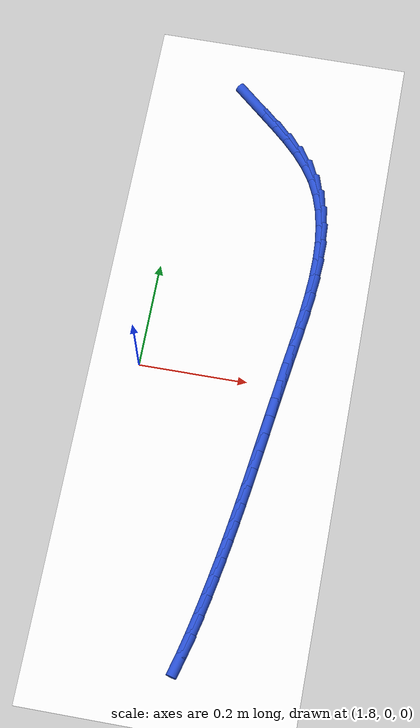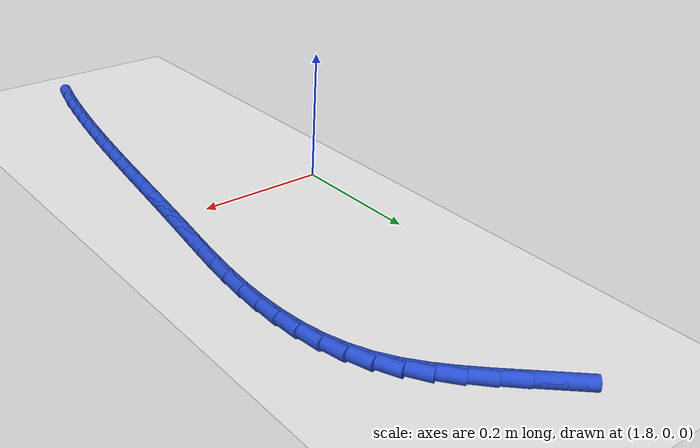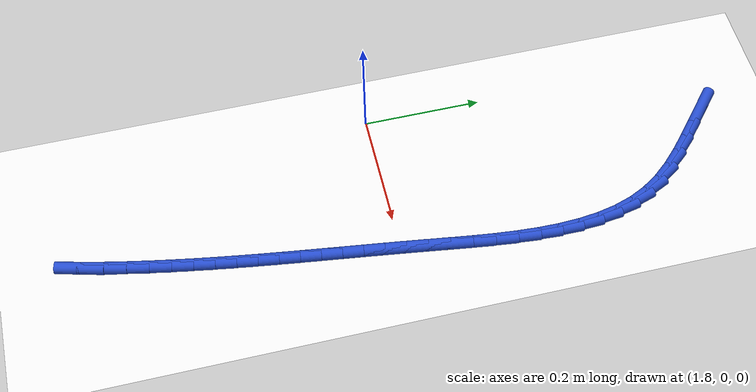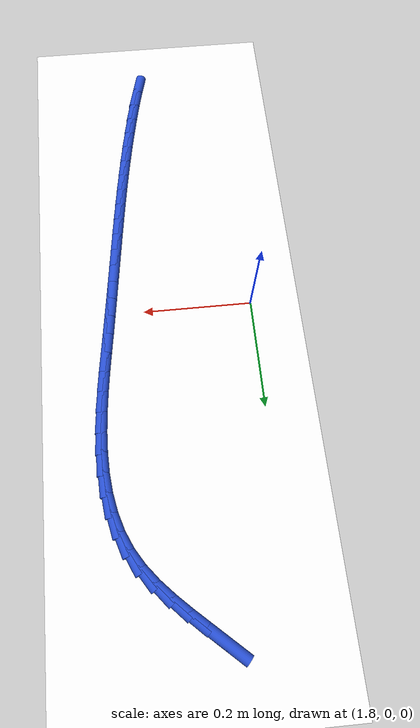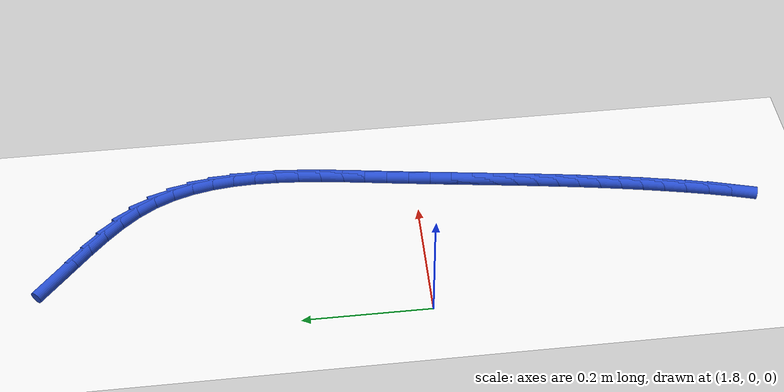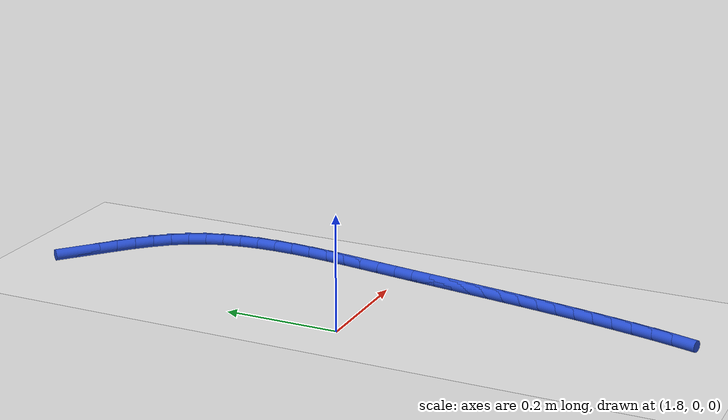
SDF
<sdf version="1.6">
 <world name="default">
  <model name="ground_plane">
   <static>1</static>
   <link name="link">
    <collision name="collision">
     <geometry><plane><normal>0 0 1</normal><size>100 100</size></plane></geometry>
     <surface><friction><ode><mu>100</mu><mu2>50</mu2></ode></friction></surface>
    </collision>
    <visual name="visual">
     <cast_shadows>0</cast_shadows>
     <geometry><plane><normal>0 0 1</normal><size>100 100</size></plane></geometry>
     <material>
      <script><uri>file://media/materials/scripts/gazebo.material</uri><name>Gazebo/WhiteGlow</name></script>
     </material>
    </visual>
   </link>
  </model>
  <model name="line">
   <link name="link_83">
    <pose>1.9099915369198925 0.5705289220239534 0.01 0 1.57 -0.7143404378488177</pose>
    <collision name="collision">
     <geometry><cylinder><radius>0.01</radius><length>0.08</length></cylinder></geometry>
    </collision>
    <visual name="visual">
     <material>
      <script><name>Gazebo/Blue</name><uri>file://media/materials/scripts/gazebo.material</uri></script>
     </material>
     <geometry><cylinder><radius>0.01</radius><length>0.08</length></cylinder></geometry>
    </visual>
   </link>
   <link name="link_84">
    <pose>1.9370216586375075 0.5470909931320691 0.01 0 1.57 -0.7146597867275178</pose>
    <collision name="collision">
     <geometry><cylinder><radius>0.01</radius><length>0.08</length></cylinder></geometry>
    </collision>
    <visual name="visual">
     <material>
      <script><name>Gazebo/Blue</name><uri>file://media/materials/scripts/gazebo.material</uri></script>
     </material>
     <geometry><cylinder><radius>0.01</radius><length>0.08</length></cylinder></geometry>
    </visual>
   </link>
   <link name="link_85">
    <pose>1.963919042468414 0.5237531096904255 0.01 0 1.57 -0.7411603266313025</pose>
    <collision name="collision">
     <geometry><cylinder><radius>0.01</radius><length>0.08</length></cylinder></geometry>
    </collision>
    <visual name="visual">
     <material>
      <script><name>Gazebo/Blue</name><uri>file://media/materials/scripts/gazebo.material</uri></script>
     </material>
     <geometry><cylinder><radius>0.01</radius><length>0.08</length></cylinder></geometry>
    </visual>
   </link>
   <link name="link_86">
    <pose>1.989817662719679 0.5000501869067417 0.01 0 1.57 -0.7956767396665315</pose>
    <collision name="collision">
     <geometry><cylinder><radius>0.01</radius><length>0.08</length></cylinder></geometry>
    </collision>
    <visual name="visual">
     <material>
      <script><name>Gazebo/Blue</name><uri>file://media/materials/scripts/gazebo.material</uri></script>
     </material>
     <geometry><cylinder><radius>0.01</radius><length>0.08</length></cylinder></geometry>
    </visual>
   </link>
   <link name="link_87">
    <pose>2.013851493698371 0.47551713998873707 0.01 0 1.57 -0.8811182789005203</pose>
    <collision name="collision">
     <geometry><cylinder><radius>0.01</radius><length>0.08</length></cylinder></geometry>
    </collision>
    <visual name="visual">
     <material>
      <script><name>Gazebo/Blue</name><uri>file://media/materials/scripts/gazebo.material</uri></script>
     </material>
     <geometry><cylinder><radius>0.01</radius><length>0.08</length></cylinder></geometry>
    </visual>
   </link>
   <link name="link_88">
    <pose>2.0351545097115578 0.44968888414413066 0.01 0 1.57 -0.9999814185168608</pose>
    <collision name="collision">
     <geometry><cylinder><radius>0.01</radius><length>0.08</length></cylinder></geometry>
    </collision>
    <visual name="visual">
     <material>
      <script><name>Gazebo/Blue</name><uri>file://media/materials/scripts/gazebo.material</uri></script>
     </material>
     <geometry><cylinder><radius>0.01</radius><length>0.08</length></cylinder></geometry>
    </visual>
   </link>
   <link name="link_89">
    <pose>2.0528672695783374 0.4221040225088037 0.01 0 1.57 -1.1362655090646279</pose>
    <collision name="collision">
     <geometry><cylinder><radius>0.01</radius><length>0.08</length></cylinder></geometry>
    </collision>
    <visual name="visual">
     <material>
      <script><name>Gazebo/Blue</name><uri>file://media/materials/scripts/gazebo.material</uri></script>
     </material>
     <geometry><cylinder><radius>0.01</radius><length>0.08</length></cylinder></geometry>
    </visual>
   </link>
   <link name="link_90">
    <pose>2.066581884217549 0.39255406863897874 0.01 0 1.57 -1.2604225405688645</pose>
    <collision name="collision">
     <geometry><cylinder><radius>0.01</radius><length>0.08</length></cylinder></geometry>
    </collision>
    <visual name="visual">
     <material>
      <script><name>Gazebo/Blue</name><uri>file://media/materials/scripts/gazebo.material</uri></script>
     </material>
     <geometry><cylinder><radius>0.01</radius><length>0.08</length></cylinder></geometry>
    </visual>
   </link>
   <link name="link_91">
    <pose>2.0766249371217986 0.3612419078184542 0.01 0 1.57 -1.367587805332806</pose>
    <collision name="collision">
     <geometry><cylinder><radius>0.01</radius><length>0.08</length></cylinder></geometry>
    </collision>
    <visual name="visual">
     <material>
      <script><name>Gazebo/Blue</name><uri>file://media/materials/scripts/gazebo.material</uri></script>
     </material>
     <geometry><cylinder><radius>0.01</radius><length>0.08</length></cylinder></geometry>
    </visual>
   </link>
   <link name="link_92">
    <pose>2.083390412463385 0.3284081758679907 0.01 0 1.57 -1.4574944235470668</pose>
    <collision name="collision">
     <geometry><cylinder><radius>0.01</radius><length>0.08</length></cylinder></geometry>
    </collision>
    <visual name="visual">
     <material>
      <script><name>Gazebo/Blue</name><uri>file://media/materials/scripts/gazebo.material</uri></script>
     </material>
     <geometry><cylinder><radius>0.01</radius><length>0.08</length></cylinder></geometry>
    </visual>
   </link>
   <link name="link_93">
    <pose>2.087272294414604 0.2942935086083489 0.01 0 1.57 -1.5312131431064941</pose>
    <collision name="collision">
     <geometry><cylinder><radius>0.01</radius><length>0.08</length></cylinder></geometry>
    </collision>
    <visual name="visual">
     <material>
      <script><name>Gazebo/Blue</name><uri>file://media/materials/scripts/gazebo.material</uri></script>
     </material>
     <geometry><cylinder><radius>0.01</radius><length>0.08</length></cylinder></geometry>
    </visual>
   </link>
   <link name="link_94">
    <pose>2.088664567147752 0.2591385418602893 0.01 0 1.57 1.551236603738884</pose>
    <collision name="collision">
     <geometry><cylinder><radius>0.01</radius><length>0.08</length></cylinder></geometry>
    </collision>
    <visual name="visual">
     <material>
      <script><name>Gazebo/Blue</name><uri>file://media/materials/scripts/gazebo.material</uri></script>
     </material>
     <geometry><cylinder><radius>0.01</radius><length>0.08</length></cylinder></geometry>
    </visual>
   </link>
   <link name="link_95">
    <pose>2.087961214835127 0.22318391144457259 0.01 0 1.57 1.5050257498363069</pose>
    <collision name="collision">
     <geometry><cylinder><radius>0.01</radius><length>0.08</length></cylinder></geometry>
    </collision>
    <visual name="visual">
     <material>
      <script><name>Gazebo/Blue</name><uri>file://media/materials/scripts/gazebo.material</uri></script>
     </material>
     <geometry><cylinder><radius>0.01</radius><length>0.08</length></cylinder></geometry>
    </visual>
   </link>
   <link name="link_96">
    <pose>2.0855562216490253 0.18667025318195987 0.01 0 1.57 1.4703362165522067</pose>
    <collision name="collision">
     <geometry><cylinder><radius>0.01</radius><length>0.08</length></cylinder></geometry>
    </collision>
    <visual name="visual">
     <material>
      <script><name>Gazebo/Blue</name><uri>file://media/materials/scripts/gazebo.material</uri></script>
     </material>
     <geometry><cylinder><radius>0.01</radius><length>0.08</length></cylinder></geometry>
    </visual>
   </link>
   <link name="link_97">
    <pose>2.0818435717617434 0.14983820289321095 0.01 0 1.57 1.4461053161523352</pose>
    <collision name="collision">
     <geometry><cylinder><radius>0.01</radius><length>0.08</length></cylinder></geometry>
    </collision>
    <visual name="visual">
     <material>
      <script><name>Gazebo/Blue</name><uri>file://media/materials/scripts/gazebo.material</uri></script>
     </material>
     <geometry><cylinder><radius>0.01</radius><length>0.08</length></cylinder></geometry>
    </visual>
   </link>
   <link name="link_98">
    <pose>2.0772172493455794 0.11292839639908685 0.01 0 1.57 1.431661924919474</pose>
    <collision name="collision">
     <geometry><cylinder><radius>0.01</radius><length>0.08</length></cylinder></geometry>
    </collision>
    <visual name="visual">
     <material>
      <script><name>Gazebo/Blue</name><uri>file://media/materials/scripts/gazebo.material</uri></script>
     </material>
     <geometry><cylinder><radius>0.01</radius><length>0.08</length></cylinder></geometry>
    </visual>
   </link>
   <link name="link_99">
    <pose>2.0720712385728293 0.07618146952034818 0.01 0 1.57 1.4267481559298036</pose>
    <collision name="collision">
     <geometry><cylinder><radius>0.01</radius><length>0.08</length></cylinder></geometry>
    </collision>
    <visual name="visual">
     <material>
      <script><name>Gazebo/Blue</name><uri>file://media/materials/scripts/gazebo.material</uri></script>
     </material>
     <geometry><cylinder><radius>0.01</radius><length>0.08</length></cylinder></geometry>
    </visual>
   </link>
   <link name="link_100">
    <pose>2.06679952361579 0.039838058077755555 0.01 0 1.57 1.4297047992248775</pose>
    <collision name="collision">
     <geometry><cylinder><radius>0.01</radius><length>0.08</length></cylinder></geometry>
    </collision>
    <visual name="visual">
     <material>
      <script><name>Gazebo/Blue</name><uri>file://media/materials/scripts/gazebo.material</uri></script>
     </material>
     <geometry><cylinder><radius>0.01</radius><length>0.08</length></cylinder></geometry>
    </visual>
   </link>
   <link name="link_101">
    <pose>2.061721446906965 0.004085834867135139 0.01 0 1.57 1.433330154653323</pose>
    <collision name="collision">
     <geometry><cylinder><radius>0.01</radius><length>0.08</length></cylinder></geometry>
    </collision>
    <visual name="visual">
     <material>
      <script><name>Gazebo/Blue</name><uri>file://media/materials/scripts/gazebo.material</uri></script>
     </material>
     <geometry><cylinder><radius>0.01</radius><length>0.08</length></cylinder></geometry>
    </visual>
   </link>
   <link name="link_102">
    <pose>2.056853556366725 -0.031102379131050652 0.01 0 1.57 1.435684181092276</pose>
    <collision name="collision">
     <geometry><cylinder><radius>0.01</radius><length>0.08</length></cylinder></geometry>
    </collision>
    <visual name="visual">
     <material>
      <script><name>Gazebo/Blue</name><uri>file://media/materials/scripts/gazebo.material</uri></script>
     </material>
     <geometry><cylinder><radius>0.01</radius><length>0.08</length></cylinder></geometry>
    </visual>
   </link>
   <link name="link_103">
    <pose>2.052135629477173 -0.06580823640718042 0.01 0 1.57 1.4366937683469998</pose>
    <collision name="collision">
     <geometry><cylinder><radius>0.01</radius><length>0.08</length></cylinder></geometry>
    </collision>
    <visual name="visual">
     <material>
      <script><name>Gazebo/Blue</name><uri>file://media/materials/scripts/gazebo.material</uri></script>
     </material>
     <geometry><cylinder><radius>0.01</radius><length>0.08</length></cylinder></geometry>
    </visual>
   </link>
   <link name="link_104">
    <pose>2.0475074437126177 -0.10011338945716218 0.01 0 1.57 1.4363029347367522</pose>
    <collision name="collision">
     <geometry><cylinder><radius>0.01</radius><length>0.08</length></cylinder></geometry>
    </collision>
    <visual name="visual">
     <material>
      <script><name>Gazebo/Blue</name><uri>file://media/materials/scripts/gazebo.material</uri></script>
     </material>
     <geometry><cylinder><radius>0.01</radius><length>0.08</length></cylinder></geometry>
    </visual>
   </link>
   <link name="link_105">
    <pose>2.04290877654737 -0.13409949077690392 0.01 0 1.57 1.434475263103634</pose>
    <collision name="collision">
     <geometry><cylinder><radius>0.01</radius><length>0.08</length></cylinder></geometry>
    </collision>
    <visual name="visual">
     <material>
      <script><name>Gazebo/Blue</name><uri>file://media/materials/scripts/gazebo.material</uri></script>
     </material>
     <geometry><cylinder><radius>0.01</radius><length>0.08</length></cylinder></geometry>
    </visual>
   </link>
   <link name="link_106">
    <pose>2.0382794054557416 -0.16784819286231387 0.01 0 1.57 1.431195804940171</pose>
    <collision name="collision">
     <geometry><cylinder><radius>0.01</radius><length>0.08</length></cylinder></geometry>
    </collision>
    <visual name="visual">
     <material>
      <script><name>Gazebo/Blue</name><uri>file://media/materials/scripts/gazebo.material</uri></script>
     </material>
     <geometry><cylinder><radius>0.01</radius><length>0.08</length></cylinder></geometry>
    </visual>
   </link>
   <link name="link_107">
    <pose>2.03355910791204 -0.20144114820929981 0.01 0 1.57 1.4264723203214698</pose>
    <collision name="collision">
     <geometry><cylinder><radius>0.01</radius><length>0.08</length></cylinder></geometry>
    </collision>
    <visual name="visual">
     <material>
      <script><name>Gazebo/Blue</name><uri>file://media/materials/scripts/gazebo.material</uri></script>
     </material>
     <geometry><cylinder><radius>0.01</radius><length>0.08</length></cylinder></geometry>
    </visual>
   </link>
   <link name="link_108">
    <pose>2.0286876613905775 -0.23496000931376992 0.01 0 1.57 1.4203357493912347</pose>
    <collision name="collision">
     <geometry><cylinder><radius>0.01</radius><length>0.08</length></cylinder></geometry>
    </collision>
    <visual name="visual">
     <material>
      <script><name>Gazebo/Blue</name><uri>file://media/materials/scripts/gazebo.material</uri></script>
     </material>
     <geometry><cylinder><radius>0.01</radius><length>0.08</length></cylinder></geometry>
    </visual>
   </link>
   <link name="link_109">
    <pose>2.023604843365664 -0.26848642867163236 0.01 0 1.57 1.4128398498357457</pose>
    <collision name="collision">
     <geometry><cylinder><radius>0.01</radius><length>0.08</length></cylinder></geometry>
    </collision>
    <visual name="visual">
     <material>
      <script><name>Gazebo/Blue</name><uri>file://media/materials/scripts/gazebo.material</uri></script>
     </material>
     <geometry><cylinder><radius>0.01</radius><length>0.08</length></cylinder></geometry>
    </visual>
   </link>
   <link name="link_110">
    <pose>2.0182504313116096 -0.3021020587787949 0.01 0 1.57 1.4040599824658533</pose>
    <collision name="collision">
     <geometry><cylinder><radius>0.01</radius><length>0.08</length></cylinder></geometry>
    </collision>
    <visual name="visual">
     <material>
      <script><name>Gazebo/Blue</name><uri>file://media/materials/scripts/gazebo.material</uri></script>
     </material>
     <geometry><cylinder><radius>0.01</radius><length>0.08</length></cylinder></geometry>
    </visual>
   </link>
   <link name="link_111">
    <pose>2.012564202702724 -0.33588855213116575 0.01 0 1.57 1.3940910805096207</pose>
    <collision name="collision">
     <geometry><cylinder><radius>0.01</radius><length>0.08</length></cylinder></geometry>
    </collision>
    <visual name="visual">
     <material>
      <script><name>Gazebo/Blue</name><uri>file://media/materials/scripts/gazebo.material</uri></script>
     </material>
     <geometry><cylinder><radius>0.01</radius><length>0.08</length></cylinder></geometry>
    </visual>
   </link>
   <link name="link_112">
    <pose>2.006485935013319 -0.369927561224653 0.01 0 1.57 1.383044892928411</pose>
    <collision name="collision">
     <geometry><cylinder><radius>0.01</radius><length>0.08</length></cylinder></geometry>
    </collision>
    <visual name="visual">
     <material>
      <script><name>Gazebo/Blue</name><uri>file://media/materials/scripts/gazebo.material</uri></script>
     </material>
     <geometry><cylinder><radius>0.01</radius><length>0.08</length></cylinder></geometry>
    </visual>
   </link>
   <link name="link_113">
    <pose>1.9999554057177034 -0.4043007385551647 0.01 0 1.57 1.3710466410581506</pose>
    <collision name="collision">
     <geometry><cylinder><radius>0.01</radius><length>0.08</length></cylinder></geometry>
    </collision>
    <visual name="visual">
     <material>
      <script><name>Gazebo/Blue</name><uri>file://media/materials/scripts/gazebo.material</uri></script>
     </material>
     <geometry><cylinder><radius>0.01</radius><length>0.08</length></cylinder></geometry>
    </visual>
   </link>
   <link name="link_114">
    <pose>1.992912392256151 -0.43908973653195976 0.01 0 1.57 1.3570351446288935</pose>
    <collision name="collision">
     <geometry><cylinder><radius>0.01</radius><length>0.08</length></cylinder></geometry>
    </collision>
    <visual name="visual">
     <material>
      <script><name>Gazebo/Blue</name><uri>file://media/materials/scripts/gazebo.material</uri></script>
     </material>
     <geometry><cylinder><radius>0.01</radius><length>0.08</length></cylinder></geometry>
    </visual>
   </link>
   <link name="link_115">
    <pose>1.9852682141056082 -0.47430376005464886 0.01 0 1.57 1.3364275604902363</pose>
    <collision name="collision">
     <geometry><cylinder><radius>0.01</radius><length>0.08</length></cylinder></geometry>
    </collision>
    <visual name="visual">
     <material>
      <script><name>Gazebo/Blue</name><uri>file://media/materials/scripts/gazebo.material</uri></script>
     </material>
     <geometry><cylinder><radius>0.01</radius><length>0.08</length></cylinder></geometry>
    </visual>
   </link>
   <link name="link_116">
    <pose>1.9768239638647631 -0.5096714014317806 0.01 0 1.57 1.3078583635185492</pose>
    <collision name="collision">
     <geometry><cylinder><radius>0.01</radius><length>0.08</length></cylinder></geometry>
    </collision>
    <visual name="visual">
     <material>
      <script><name>Gazebo/Blue</name><uri>file://media/materials/scripts/gazebo.material</uri></script>
     </material>
     <geometry><cylinder><radius>0.01</radius><length>0.08</length></cylinder></geometry>
    </visual>
   </link>
  </model>
 </world>
</sdf>
